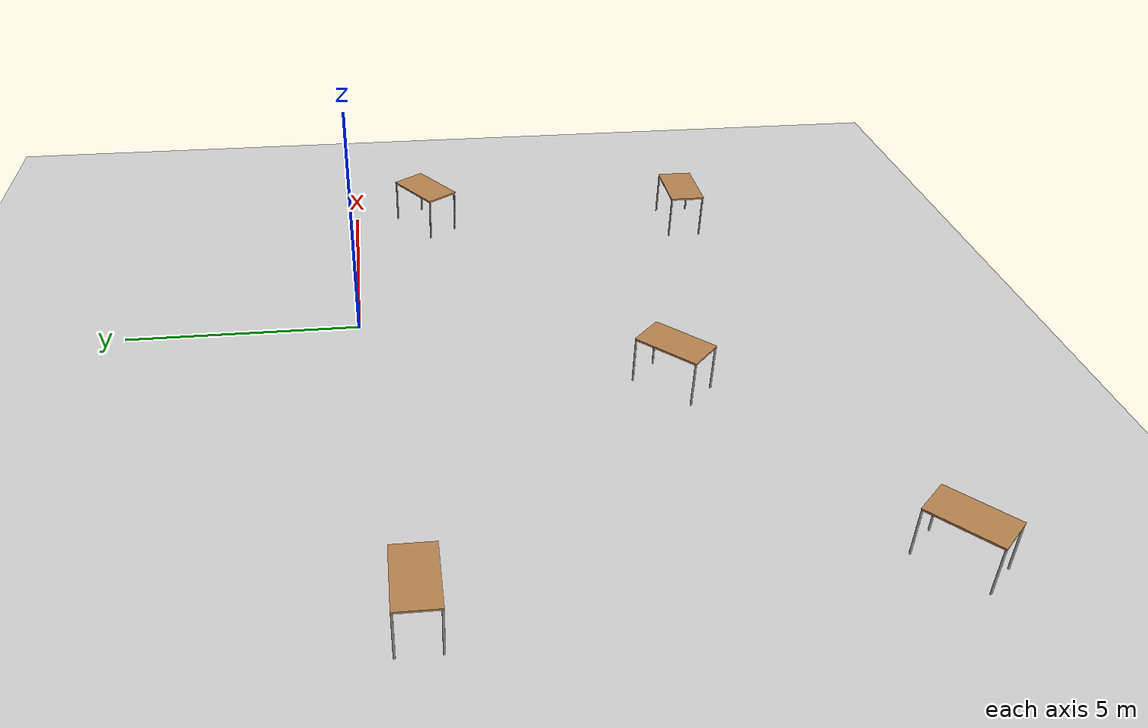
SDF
<sdf version="1.6">
 <world name="default">
  <model name="ground_plane">
   <static>1</static>
   <link name="link">
    <collision name="collision">
     <geometry><plane><normal>0 0 1</normal><size>100 100</size></plane></geometry>
     <surface><friction><ode><mu>100</mu><mu2>50</mu2></ode></friction></surface>
    </collision>
    <visual name="visual">
     <cast_shadows>0</cast_shadows>
     <geometry><plane><normal>0 0 1</normal><size>100 100</size></plane></geometry>
     <material>
      <script><uri>file://media/materials/scripts/gazebo.material</uri><name>Gazebo/Grey</name></script>
     </material>
    </visual>
   </link>
  </model>
  <model name="table">
   <static>0</static>
   <link name="link">
    <collision name="surface">
     <pose>0 0 1 0 -0 0</pose>
     <geometry><box><size>1.5 0.8 0.03</size></box></geometry>
     <surface><friction><ode><mu>0.6</mu><mu2>0.6</mu2></ode></friction></surface>
    </collision>
    <visual name="visual1">
     <pose>0 0 1 0 -0 0</pose>
     <geometry><box><size>1.4 0.8 0.04</size></box></geometry>
     <material>
      <script><uri>file://media/materials/scripts/gazebo.material</uri><name>Gazebo/Wood</name></script>
     </material>
    </visual>
    <collision name="front_left_leg">
     <pose>0.68 0.38 0.5 0 -0 0</pose>
     <geometry><cylinder><radius>0.02</radius><length>1</length></cylinder></geometry>
    </collision>
    <visual name="front_left_leg">
     <pose>0.68 0.38 0.5 0 -0 0</pose>
     <geometry><cylinder><radius>0.02</radius><length>1</length></cylinder></geometry>
     <material>
      <script><uri>file://media/materials/scripts/gazebo.material</uri><name>Gazebo/Grey</name></script>
     </material>
    </visual>
    <collision name="front_right_leg">
     <pose>0.68 -0.38 0.5 0 -0 0</pose>
     <geometry><cylinder><radius>0.02</radius><length>1</length></cylinder></geometry>
    </collision>
    <visual name="front_right_leg">
     <pose>0.68 -0.38 0.5 0 -0 0</pose>
     <geometry><cylinder><radius>0.02</radius><length>1</length></cylinder></geometry>
     <material>
      <script><uri>file://media/materials/scripts/gazebo.material</uri><name>Gazebo/Grey</name></script>
     </material>
    </visual>
    <collision name="back_right_leg">
     <pose>-0.68 -0.38 0.5 0 -0 0</pose>
     <geometry><cylinder><radius>0.02</radius><length>1</length></cylinder></geometry>
    </collision>
    <visual name="back_right_leg">
     <pose>-0.68 -0.38 0.5 0 -0 0</pose>
     <geometry><cylinder><radius>0.02</radius><length>1</length></cylinder></geometry>
     <material>
      <script><uri>file://media/materials/scripts/gazebo.material</uri><name>Gazebo/Grey</name></script>
     </material>
    </visual>
    <collision name="back_left_leg">
     <pose>-0.68 0.38 0.5 0 -0 0</pose>
     <geometry><cylinder><radius>0.02</radius><length>1</length></cylinder></geometry>
    </collision>
    <visual name="back_left_leg">
     <pose>-0.68 0.38 0.5 0 -0 0</pose>
     <geometry><cylinder><radius>0.02</radius><length>1</length></cylinder></geometry>
     <material>
      <script><uri>file://media/materials/scripts/gazebo.material</uri><name>Gazebo/Grey</name></script>
     </material>
    </visual>
    <inertial>
     <inertia><ixx>1</ixx><ixy>0</ixy><ixz>0</ixz><iyy>1</iyy><iyz>0</iyz><izz>1</izz></inertia>
     <mass>1</mass>
    </inertial>
   </link>
   <pose>-8.45641 -0.835319 -9e-06 0 -0 0</pose>
  </model>
  <model name="table_0">
   <static>0</static>
   <link name="link">
    <collision name="surface">
     <pose>0 0 1 0 -0 0</pose>
     <geometry><box><size>1.5 0.8 0.03</size></box></geometry>
     <surface><friction><ode><mu>0.6</mu><mu2>0.6</mu2></ode></friction></surface>
    </collision>
    <visual name="visual1">
     <pose>0 0 1 0 -0 0</pose>
     <geometry><box><size>1.4 0.8 0.04</size></box></geometry>
     <material>
      <script><uri>file://media/materials/scripts/gazebo.material</uri><name>Gazebo/Wood</name></script>
     </material>
    </visual>
    <collision name="front_left_leg">
     <pose>0.68 0.38 0.5 0 -0 0</pose>
     <geometry><cylinder><radius>0.02</radius><length>1</length></cylinder></geometry>
    </collision>
    <visual name="front_left_leg">
     <pose>0.68 0.38 0.5 0 -0 0</pose>
     <geometry><cylinder><radius>0.02</radius><length>1</length></cylinder></geometry>
     <material>
      <script><uri>file://media/materials/scripts/gazebo.material</uri><name>Gazebo/Grey</name></script>
     </material>
    </visual>
    <collision name="front_right_leg">
     <pose>0.68 -0.38 0.5 0 -0 0</pose>
     <geometry><cylinder><radius>0.02</radius><length>1</length></cylinder></geometry>
    </collision>
    <visual name="front_right_leg">
     <pose>0.68 -0.38 0.5 0 -0 0</pose>
     <geometry><cylinder><radius>0.02</radius><length>1</length></cylinder></geometry>
     <material>
      <script><uri>file://media/materials/scripts/gazebo.material</uri><name>Gazebo/Grey</name></script>
     </material>
    </visual>
    <collision name="back_right_leg">
     <pose>-0.68 -0.38 0.5 0 -0 0</pose>
     <geometry><cylinder><radius>0.02</radius><length>1</length></cylinder></geometry>
    </collision>
    <visual name="back_right_leg">
     <pose>-0.68 -0.38 0.5 0 -0 0</pose>
     <geometry><cylinder><radius>0.02</radius><length>1</length></cylinder></geometry>
     <material>
      <script><uri>file://media/materials/scripts/gazebo.material</uri><name>Gazebo/Grey</name></script>
     </material>
    </visual>
    <collision name="back_left_leg">
     <pose>-0.68 0.38 0.5 0 -0 0</pose>
     <geometry><cylinder><radius>0.02</radius><length>1</length></cylinder></geometry>
    </collision>
    <visual name="back_left_leg">
     <pose>-0.68 0.38 0.5 0 -0 0</pose>
     <geometry><cylinder><radius>0.02</radius><length>1</length></cylinder></geometry>
     <material>
      <script><uri>file://media/materials/scripts/gazebo.material</uri><name>Gazebo/Grey</name></script>
     </material>
    </visual>
    <inertial>
     <inertia><ixx>1</ixx><ixy>0</ixy><ixz>0</ixz><iyy>1</iyy><iyz>0</iyz><izz>1</izz></inertia>
     <mass>1</mass>
    </inertial>
   </link>
   <pose>4.11112 -8.08132 -9e-06 0 -0 0</pose>
  </model>
  <model name="table_1">
   <static>0</static>
   <link name="link">
    <collision name="surface">
     <pose>0 0 1 0 -0 0</pose>
     <geometry><box><size>1.5 0.8 0.03</size></box></geometry>
     <surface><friction><ode><mu>0.6</mu><mu2>0.6</mu2></ode></friction></surface>
    </collision>
    <visual name="visual1">
     <pose>0 0 1 0 -0 0</pose>
     <geometry><box><size>1.4 0.8 0.04</size></box></geometry>
     <material>
      <script><uri>file://media/materials/scripts/gazebo.material</uri><name>Gazebo/Wood</name></script>
     </material>
    </visual>
    <collision name="front_left_leg">
     <pose>0.68 0.38 0.5 0 -0 0</pose>
     <geometry><cylinder><radius>0.02</radius><length>1</length></cylinder></geometry>
    </collision>
    <visual name="front_left_leg">
     <pose>0.68 0.38 0.5 0 -0 0</pose>
     <geometry><cylinder><radius>0.02</radius><length>1</length></cylinder></geometry>
     <material>
      <script><uri>file://media/materials/scripts/gazebo.material</uri><name>Gazebo/Grey</name></script>
     </material>
    </visual>
    <collision name="front_right_leg">
     <pose>0.68 -0.38 0.5 0 -0 0</pose>
     <geometry><cylinder><radius>0.02</radius><length>1</length></cylinder></geometry>
    </collision>
    <visual name="front_right_leg">
     <pose>0.68 -0.38 0.5 0 -0 0</pose>
     <geometry><cylinder><radius>0.02</radius><length>1</length></cylinder></geometry>
     <material>
      <script><uri>file://media/materials/scripts/gazebo.material</uri><name>Gazebo/Grey</name></script>
     </material>
    </visual>
    <collision name="back_right_leg">
     <pose>-0.68 -0.38 0.5 0 -0 0</pose>
     <geometry><cylinder><radius>0.02</radius><length>1</length></cylinder></geometry>
    </collision>
    <visual name="back_right_leg">
     <pose>-0.68 -0.38 0.5 0 -0 0</pose>
     <geometry><cylinder><radius>0.02</radius><length>1</length></cylinder></geometry>
     <material>
      <script><uri>file://media/materials/scripts/gazebo.material</uri><name>Gazebo/Grey</name></script>
     </material>
    </visual>
    <collision name="back_left_leg">
     <pose>-0.68 0.38 0.5 0 -0 0</pose>
     <geometry><cylinder><radius>0.02</radius><length>1</length></cylinder></geometry>
    </collision>
    <visual name="back_left_leg">
     <pose>-0.68 0.38 0.5 0 -0 0</pose>
     <geometry><cylinder><radius>0.02</radius><length>1</length></cylinder></geometry>
     <material>
      <script><uri>file://media/materials/scripts/gazebo.material</uri><name>Gazebo/Grey</name></script>
     </material>
    </visual>
    <inertial>
     <inertia><ixx>1</ixx><ixy>0</ixy><ixz>0</ixz><iyy>1</iyy><iyz>0</iyz><izz>1</izz></inertia>
     <mass>1</mass>
    </inertial>
   </link>
   <pose>4.6721 -1.71836 -1e-05 0 -0 0.603298</pose>
  </model>
  <model name="table_0_clone">
   <static>0</static>
   <link name="link">
    <collision name="surface">
     <pose>0 0 1 0 -0 0</pose>
     <geometry><box><size>1.5 0.8 0.03</size></box></geometry>
     <surface><friction><ode><mu>0.6</mu><mu2>0.6</mu2></ode></friction></surface>
    </collision>
    <visual name="visual1">
     <pose>0 0 1 0 -0 0</pose>
     <geometry><box><size>1.4 0.8 0.04</size></box></geometry>
     <material>
      <script><uri>file://media/materials/scripts/gazebo.material</uri><name>Gazebo/Wood</name></script>
     </material>
    </visual>
    <collision name="front_left_leg">
     <pose>0.68 0.38 0.5 0 -0 0</pose>
     <geometry><cylinder><radius>0.02</radius><length>1</length></cylinder></geometry>
    </collision>
    <visual name="front_left_leg">
     <pose>0.68 0.38 0.5 0 -0 0</pose>
     <geometry><cylinder><radius>0.02</radius><length>1</length></cylinder></geometry>
     <material>
      <script><uri>file://media/materials/scripts/gazebo.material</uri><name>Gazebo/Grey</name></script>
     </material>
    </visual>
    <collision name="front_right_leg">
     <pose>0.68 -0.38 0.5 0 -0 0</pose>
     <geometry><cylinder><radius>0.02</radius><length>1</length></cylinder></geometry>
    </collision>
    <visual name="front_right_leg">
     <pose>0.68 -0.38 0.5 0 -0 0</pose>
     <geometry><cylinder><radius>0.02</radius><length>1</length></cylinder></geometry>
     <material>
      <script><uri>file://media/materials/scripts/gazebo.material</uri><name>Gazebo/Grey</name></script>
     </material>
    </visual>
    <collision name="back_right_leg">
     <pose>-0.68 -0.38 0.5 0 -0 0</pose>
     <geometry><cylinder><radius>0.02</radius><length>1</length></cylinder></geometry>
    </collision>
    <visual name="back_right_leg">
     <pose>-0.68 -0.38 0.5 0 -0 0</pose>
     <geometry><cylinder><radius>0.02</radius><length>1</length></cylinder></geometry>
     <material>
      <script><uri>file://media/materials/scripts/gazebo.material</uri><name>Gazebo/Grey</name></script>
     </material>
    </visual>
    <collision name="back_left_leg">
     <pose>-0.68 0.38 0.5 0 -0 0</pose>
     <geometry><cylinder><radius>0.02</radius><length>1</length></cylinder></geometry>
    </collision>
    <visual name="back_left_leg">
     <pose>-0.68 0.38 0.5 0 -0 0</pose>
     <geometry><cylinder><radius>0.02</radius><length>1</length></cylinder></geometry>
     <material>
      <script><uri>file://media/materials/scripts/gazebo.material</uri><name>Gazebo/Grey</name></script>
     </material>
    </visual>
    <inertial>
     <inertia><ixx>1</ixx><ixy>0</ixy><ixz>0</ixz><iyy>1</iyy><iyz>0</iyz><izz>1</izz></inertia>
     <mass>1</mass>
    </inertial>
   </link>
   <pose>-8.04629 -9.85646 -1e-06 -2e-06 -0 0.74218</pose>
  </model>
  <model name="table_0_clone_0">
   <static>0</static>
   <link name="link">
    <collision name="surface">
     <pose>0 0 1 0 -0 0</pose>
     <geometry><box><size>1.5 0.8 0.03</size></box></geometry>
     <surface><friction><ode><mu>0.6</mu><mu2>0.6</mu2></ode></friction></surface>
    </collision>
    <visual name="visual1">
     <pose>0 0 1 0 -0 0</pose>
     <geometry><box><size>1.4 0.8 0.04</size></box></geometry>
     <material>
      <script><uri>file://media/materials/scripts/gazebo.material</uri><name>Gazebo/Wood</name></script>
     </material>
    </visual>
    <collision name="front_left_leg">
     <pose>0.68 0.38 0.5 0 -0 0</pose>
     <geometry><cylinder><radius>0.02</radius><length>1</length></cylinder></geometry>
    </collision>
    <visual name="front_left_leg">
     <pose>0.68 0.38 0.5 0 -0 0</pose>
     <geometry><cylinder><radius>0.02</radius><length>1</length></cylinder></geometry>
     <material>
      <script><uri>file://media/materials/scripts/gazebo.material</uri><name>Gazebo/Grey</name></script>
     </material>
    </visual>
    <collision name="front_right_leg">
     <pose>0.68 -0.38 0.5 0 -0 0</pose>
     <geometry><cylinder><radius>0.02</radius><length>1</length></cylinder></geometry>
    </collision>
    <visual name="front_right_leg">
     <pose>0.68 -0.38 0.5 0 -0 0</pose>
     <geometry><cylinder><radius>0.02</radius><length>1</length></cylinder></geometry>
     <material>
      <script><uri>file://media/materials/scripts/gazebo.material</uri><name>Gazebo/Grey</name></script>
     </material>
    </visual>
    <collision name="back_right_leg">
     <pose>-0.68 -0.38 0.5 0 -0 0</pose>
     <geometry><cylinder><radius>0.02</radius><length>1</length></cylinder></geometry>
    </collision>
    <visual name="back_right_leg">
     <pose>-0.68 -0.38 0.5 0 -0 0</pose>
     <geometry><cylinder><radius>0.02</radius><length>1</length></cylinder></geometry>
     <material>
      <script><uri>file://media/materials/scripts/gazebo.material</uri><name>Gazebo/Grey</name></script>
     </material>
    </visual>
    <collision name="back_left_leg">
     <pose>-0.68 0.38 0.5 0 -0 0</pose>
     <geometry><cylinder><radius>0.02</radius><length>1</length></cylinder></geometry>
    </collision>
    <visual name="back_left_leg">
     <pose>-0.68 0.38 0.5 0 -0 0</pose>
     <geometry><cylinder><radius>0.02</radius><length>1</length></cylinder></geometry>
     <material>
      <script><uri>file://media/materials/scripts/gazebo.material</uri><name>Gazebo/Grey</name></script>
     </material>
    </visual>
    <inertial>
     <inertia><ixx>1</ixx><ixy>0</ixy><ixz>0</ixz><iyy>1</iyy><iyz>0</iyz><izz>1</izz></inertia>
     <mass>1</mass>
    </inertial>
   </link>
   <pose>-2.70032 -6.28133 -8e-06 -1e-06 -0 0.788199</pose>
  </model>
 </world>
</sdf>
